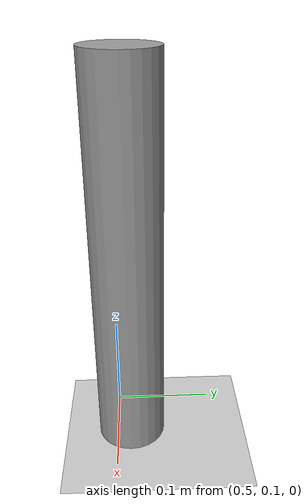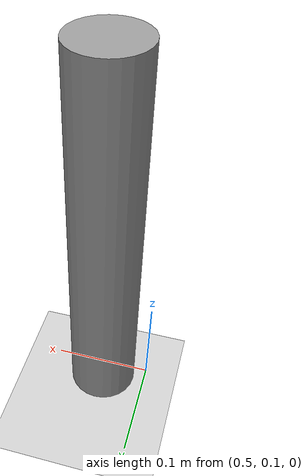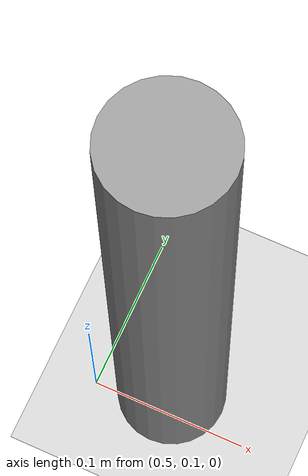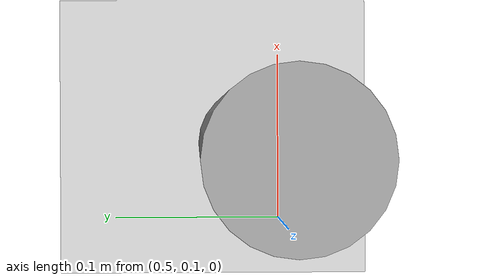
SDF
<sdf version="1.6">
 <world name="default">
  <model name="ground_plane">
   <static>1</static>
   <link name="link">
    <collision name="collision">
     <geometry><plane><normal>0 0 1</normal><size>100 100</size></plane></geometry>
     <surface>
      <contact><collide_bitmask>65535</collide_bitmask></contact>
      <friction><ode><mu>100</mu><mu2>50</mu2></ode></friction>
     </surface>
    </collision>
    <visual name="visual">
     <cast_shadows>0</cast_shadows>
     <geometry><plane><normal>0 0 1</normal><size>100 100</size></plane></geometry>
     <material>
      <script><uri>file://media/materials/scripts/gazebo.material</uri><name>Gazebo/Grey</name></script>
     </material>
    </visual>
   </link>
  </model>
  <model name="unit_cylinder">
   <link name="link">
    <inertial>
     <mass>10</mass>
     <inertia>
      <ixx>0.125848</ixx>
      <ixy>0</ixy>
      <ixz>0</ixz>
      <iyy>0.125848</iyy>
      <iyz>0</iyz>
      <izz>0.00584307</izz>
     </inertia>
    </inertial>
    <visual name="visual">
     <geometry><cylinder><radius>0.0341848</radius><length>0.384072</length></cylinder></geometry>
     <material>
      <script><name>Gazebo/Grey</name><uri>file://media/materials/scripts/gazebo.material</uri></script>
      <shader type="pixel"><normal_map>__default__</normal_map></shader>
     </material>
    </visual>
    <collision name="collision">
     <geometry><cylinder><radius>0.034185</radius><length>0.384072</length></cylinder></geometry>
     <surface>
      <friction>
       <ode><mu>1</mu><mu2>1</mu2><fdir1>0 0 0</fdir1><slip1>0</slip1><slip2>0</slip2></ode>
       <torsional>
        <coefficient>1</coefficient>
        <patch_radius>0</patch_radius>
        <surface_radius>0</surface_radius>
        <use_patch_radius>1</use_patch_radius>
        <ode><slip>0</slip></ode>
       </torsional>
      </friction>
      <bounce><restitution_coefficient>0</restitution_coefficient><threshold>1e+06</threshold></bounce>
      <contact>
       <collide_without_contact>0</collide_without_contact>
       <collide_without_contact_bitmask>1</collide_without_contact_bitmask>
       <collide_bitmask>1</collide_bitmask>
       <ode>
        <soft_cfm>0</soft_cfm>
        <soft_erp>0.2</soft_erp>
        <kp>1e+13</kp>
        <kd>1</kd>
        <max_vel>0.01</max_vel>
        <min_depth>0</min_depth>
       </ode>
       <bullet>
        <split_impulse>1</split_impulse>
        <split_impulse_penetration_threshold>-0.01</split_impulse_penetration_threshold>
        <soft_cfm>0</soft_cfm>
        <soft_erp>0.2</soft_erp>
        <kp>1e+13</kp>
        <kd>1</kd>
       </bullet>
      </contact>
     </surface>
    </collision>
   </link>
   <static>0</static>
   <pose>0.545942 0.11453 0.192036 0 0 -0.005311</pose>
  </model>
 </world>
</sdf>
